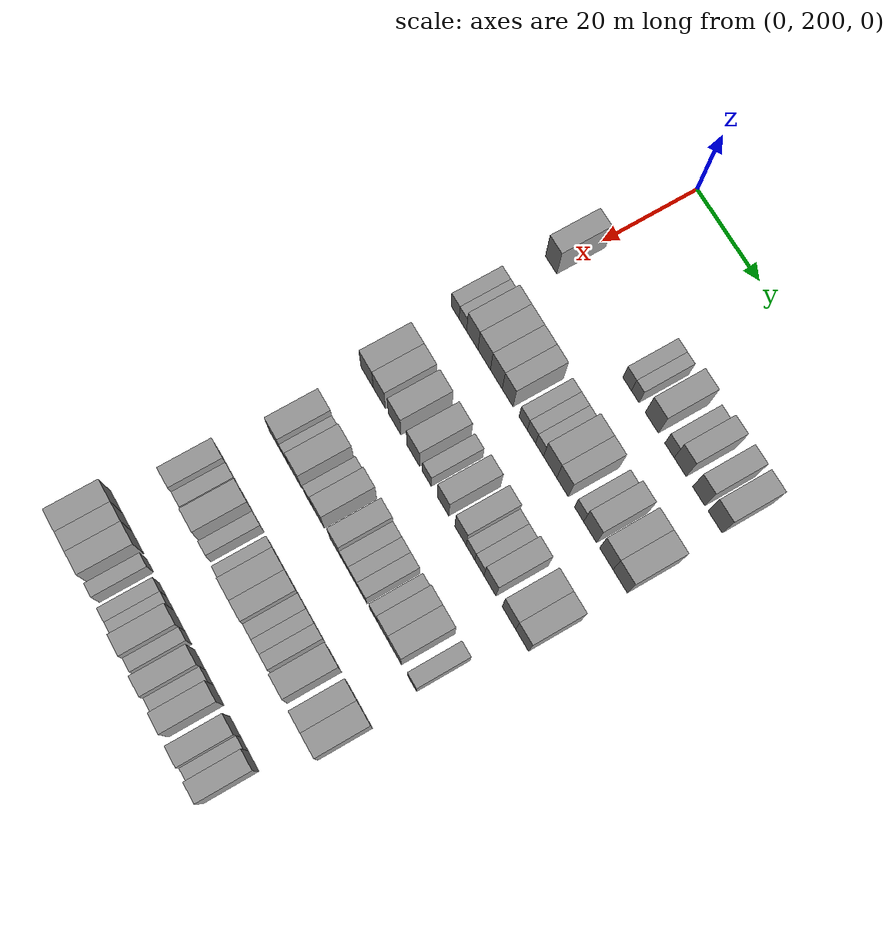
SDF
<sdf version="1.6">
 <world name="default">
  <model name="building_141">
   <static>1</static>
   <pose>25.0000 199.3216 0 0.000000 0.000000 0.000000</pose>
   <link name="link">
    <pose>0 0 4.50 0 0 0</pose>
    <collision name="collision"><geometry><box><size>10.0000 3.8499 9.0000</size></box></geometry></collision>
    <visual name="visual">
     <cast_shadows>0</cast_shadows>
     <geometry><box><size>10.0000 3.8499 9.0000</size></box></geometry>
     <material>
      <script>
       <uri>model://grey_wall/materials/scripts</uri>
       <uri>model://grey_wall/materials/textures</uri>
       <name>vrc/grey_wall</name>
      </script>
     </material>
    </visual>
   </link>
  </model>
  <model name="building_142">
   <static>1</static>
   <pose>25.0000 224.4244 0 0.000000 0.000000 0.000000</pose>
   <link name="link">
    <pose>0 0 3.00 0 0 0</pose>
    <collision name="collision"><geometry><box><size>10.0000 2.7853 6.0000</size></box></geometry></collision>
    <visual name="visual">
     <cast_shadows>0</cast_shadows>
     <geometry><box><size>10.0000 2.7853 6.0000</size></box></geometry>
     <material>
      <script>
       <uri>model://grey_wall/materials/scripts</uri>
       <uri>model://grey_wall/materials/textures</uri>
       <name>vrc/grey_wall</name>
      </script>
     </material>
    </visual>
   </link>
  </model>
  <model name="building_143">
   <static>1</static>
   <pose>25.0000 227.0299 0 0.000000 0.000000 0.000000</pose>
   <link name="link">
    <pose>0 0 3.00 0 0 0</pose>
    <collision name="collision"><geometry><box><size>10.0000 2.4257 6.0000</size></box></geometry></collision>
    <visual name="visual">
     <cast_shadows>0</cast_shadows>
     <geometry><box><size>10.0000 2.4257 6.0000</size></box></geometry>
     <material>
      <script>
       <uri>model://grey_wall/materials/scripts</uri>
       <uri>model://grey_wall/materials/textures</uri>
       <name>vrc/grey_wall</name>
      </script>
     </material>
    </visual>
   </link>
  </model>
  <model name="building_144">
   <static>1</static>
   <pose>25.0000 232.3361 0 0.000000 0.000000 0.000000</pose>
   <link name="link">
    <pose>0 0 4.50 0 0 0</pose>
    <collision name="collision"><geometry><box><size>10.0000 4.1868 9.0000</size></box></geometry></collision>
    <visual name="visual">
     <cast_shadows>0</cast_shadows>
     <geometry><box><size>10.0000 4.1868 9.0000</size></box></geometry>
     <material>
      <script>
       <uri>model://grey_wall/materials/scripts</uri>
       <uri>model://grey_wall/materials/textures</uri>
       <name>vrc/grey_wall</name>
      </script>
     </material>
    </visual>
   </link>
  </model>
  <model name="building_145">
   <static>1</static>
   <pose>25.0000 237.9177 0 0.000000 0.000000 0.000000</pose>
   <link name="link">
    <pose>0 0 3.00 0 0 0</pose>
    <collision name="collision"><geometry><box><size>10.0000 2.9762 6.0000</size></box></geometry></collision>
    <visual name="visual">
     <cast_shadows>0</cast_shadows>
     <geometry><box><size>10.0000 2.9762 6.0000</size></box></geometry>
     <material>
      <script>
       <uri>model://grey_wall/materials/scripts</uri>
       <uri>model://grey_wall/materials/textures</uri>
       <name>vrc/grey_wall</name>
      </script>
     </material>
    </visual>
   </link>
  </model>
  <model name="building_146">
   <static>1</static>
   <pose>25.0000 241.2776 0 0.000000 0.000000 0.000000</pose>
   <link name="link">
    <pose>0 0 4.50 0 0 0</pose>
    <collision name="collision"><geometry><box><size>10.0000 3.7437 9.0000</size></box></geometry></collision>
    <visual name="visual">
     <cast_shadows>0</cast_shadows>
     <geometry><box><size>10.0000 3.7437 9.0000</size></box></geometry>
     <material>
      <script>
       <uri>model://grey_wall/materials/scripts</uri>
       <uri>model://grey_wall/materials/textures</uri>
       <name>vrc/grey_wall</name>
      </script>
     </material>
    </visual>
   </link>
  </model>
  <model name="building_147">
   <static>1</static>
   <pose>25.0000 247.0476 0 0.000000 0.000000 0.000000</pose>
   <link name="link">
    <pose>0 0 4.50 0 0 0</pose>
    <collision name="collision"><geometry><box><size>10.0000 3.7961 9.0000</size></box></geometry></collision>
    <visual name="visual">
     <cast_shadows>0</cast_shadows>
     <geometry><box><size>10.0000 3.7961 9.0000</size></box></geometry>
     <material>
      <script>
       <uri>model://grey_wall/materials/scripts</uri>
       <uri>model://grey_wall/materials/textures</uri>
       <name>vrc/grey_wall</name>
      </script>
     </material>
    </visual>
   </link>
  </model>
  <model name="building_148">
   <static>1</static>
   <pose>25.0000 252.1090 0 0.000000 0.000000 0.000000</pose>
   <link name="link">
    <pose>0 0 4.50 0 0 0</pose>
    <collision name="collision"><geometry><box><size>10.0000 4.3268 9.0000</size></box></geometry></collision>
    <visual name="visual">
     <cast_shadows>0</cast_shadows>
     <geometry><box><size>10.0000 4.3268 9.0000</size></box></geometry>
     <material>
      <script>
       <uri>model://grey_wall/materials/scripts</uri>
       <uri>model://grey_wall/materials/textures</uri>
       <name>vrc/grey_wall</name>
      </script>
     </material>
    </visual>
   </link>
  </model>
  <model name="building_313">
   <static>1</static>
   <pose>44.0000 198.5536 0 0.000000 0.000000 0.000000</pose>
   <link name="link">
    <pose>0 0 3.00 0 0 0</pose>
    <collision name="collision"><geometry><box><size>10.0000 2.7606 6.0000</size></box></geometry></collision>
    <visual name="visual">
     <cast_shadows>0</cast_shadows>
     <geometry><box><size>10.0000 2.7606 6.0000</size></box></geometry>
     <material>
      <script>
       <uri>model://grey_wall/materials/scripts</uri>
       <uri>model://grey_wall/materials/textures</uri>
       <name>vrc/grey_wall</name>
      </script>
     </material>
    </visual>
   </link>
  </model>
  <model name="building_314">
   <static>1</static>
   <pose>44.0000 201.2139 0 0.000000 0.000000 0.000000</pose>
   <link name="link">
    <pose>0 0 3.00 0 0 0</pose>
    <collision name="collision"><geometry><box><size>10.0000 2.5600 6.0000</size></box></geometry></collision>
    <visual name="visual">
     <cast_shadows>0</cast_shadows>
     <geometry><box><size>10.0000 2.5600 6.0000</size></box></geometry>
     <material>
      <script>
       <uri>model://grey_wall/materials/scripts</uri>
       <uri>model://grey_wall/materials/textures</uri>
       <name>vrc/grey_wall</name>
      </script>
     </material>
    </visual>
   </link>
  </model>
  <model name="building_315">
   <static>1</static>
   <pose>44.0000 204.4459 0 0.000000 0.000000 0.000000</pose>
   <link name="link">
    <pose>0 0 4.50 0 0 0</pose>
    <collision name="collision"><geometry><box><size>10.0000 3.9041 9.0000</size></box></geometry></collision>
    <visual name="visual">
     <cast_shadows>0</cast_shadows>
     <geometry><box><size>10.0000 3.9041 9.0000</size></box></geometry>
     <material>
      <script>
       <uri>model://grey_wall/materials/scripts</uri>
       <uri>model://grey_wall/materials/textures</uri>
       <name>vrc/grey_wall</name>
      </script>
     </material>
    </visual>
   </link>
  </model>
  <model name="building_316">
   <static>1</static>
   <pose>44.0000 208.5013 0 0.000000 0.000000 0.000000</pose>
   <link name="link">
    <pose>0 0 4.50 0 0 0</pose>
    <collision name="collision"><geometry><box><size>10.0000 4.2067 9.0000</size></box></geometry></collision>
    <visual name="visual">
     <cast_shadows>0</cast_shadows>
     <geometry><box><size>10.0000 4.2067 9.0000</size></box></geometry>
     <material>
      <script>
       <uri>model://grey_wall/materials/scripts</uri>
       <uri>model://grey_wall/materials/textures</uri>
       <name>vrc/grey_wall</name>
      </script>
     </material>
    </visual>
   </link>
  </model>
  <model name="building_317">
   <static>1</static>
   <pose>44.0000 212.5842 0 0.000000 0.000000 0.000000</pose>
   <link name="link">
    <pose>0 0 4.50 0 0 0</pose>
    <collision name="collision"><geometry><box><size>10.0000 3.9591 9.0000</size></box></geometry></collision>
    <visual name="visual">
     <cast_shadows>0</cast_shadows>
     <geometry><box><size>10.0000 3.9591 9.0000</size></box></geometry>
     <material>
      <script>
       <uri>model://grey_wall/materials/scripts</uri>
       <uri>model://grey_wall/materials/textures</uri>
       <name>vrc/grey_wall</name>
      </script>
     </material>
    </visual>
   </link>
  </model>
  <model name="building_318">
   <static>1</static>
   <pose>44.0000 216.3740 0 0.000000 0.000000 0.000000</pose>
   <link name="link">
    <pose>0 0 4.50 0 0 0</pose>
    <collision name="collision"><geometry><box><size>10.0000 3.6204 9.0000</size></box></geometry></collision>
    <visual name="visual">
     <cast_shadows>0</cast_shadows>
     <geometry><box><size>10.0000 3.6204 9.0000</size></box></geometry>
     <material>
      <script>
       <uri>model://grey_wall/materials/scripts</uri>
       <uri>model://grey_wall/materials/textures</uri>
       <name>vrc/grey_wall</name>
      </script>
     </material>
    </visual>
   </link>
  </model>
  <model name="building_319">
   <static>1</static>
   <pose>44.0000 221.5560 0 0.000000 0.000000 0.000000</pose>
   <link name="link">
    <pose>0 0 3.00 0 0 0</pose>
    <collision name="collision"><geometry><box><size>10.0000 2.7437 6.0000</size></box></geometry></collision>
    <visual name="visual">
     <cast_shadows>0</cast_shadows>
     <geometry><box><size>10.0000 2.7437 6.0000</size></box></geometry>
     <material>
      <script>
       <uri>model://grey_wall/materials/scripts</uri>
       <uri>model://grey_wall/materials/textures</uri>
       <name>vrc/grey_wall</name>
      </script>
     </material>
    </visual>
   </link>
  </model>
  <model name="building_320">
   <static>1</static>
   <pose>44.0000 224.2764 0 0.000000 0.000000 0.000000</pose>
   <link name="link">
    <pose>0 0 3.00 0 0 0</pose>
    <collision name="collision"><geometry><box><size>10.0000 2.6971 6.0000</size></box></geometry></collision>
    <visual name="visual">
     <cast_shadows>0</cast_shadows>
     <geometry><box><size>10.0000 2.6971 6.0000</size></box></geometry>
     <material>
      <script>
       <uri>model://grey_wall/materials/scripts</uri>
       <uri>model://grey_wall/materials/textures</uri>
       <name>vrc/grey_wall</name>
      </script>
     </material>
    </visual>
   </link>
  </model>
  <model name="building_321">
   <static>1</static>
   <pose>44.0000 226.9335 0 0.000000 0.000000 0.000000</pose>
   <link name="link">
    <pose>0 0 3.00 0 0 0</pose>
    <collision name="collision"><geometry><box><size>10.0000 2.6172 6.0000</size></box></geometry></collision>
    <visual name="visual">
     <cast_shadows>0</cast_shadows>
     <geometry><box><size>10.0000 2.6172 6.0000</size></box></geometry>
     <material>
      <script>
       <uri>model://grey_wall/materials/scripts</uri>
       <uri>model://grey_wall/materials/textures</uri>
       <name>vrc/grey_wall</name>
      </script>
     </material>
    </visual>
   </link>
  </model>
  <model name="building_322">
   <static>1</static>
   <pose>44.0000 230.3954 0 0.000000 0.000000 0.000000</pose>
   <link name="link">
    <pose>0 0 4.50 0 0 0</pose>
    <collision name="collision"><geometry><box><size>10.0000 4.3066 9.0000</size></box></geometry></collision>
    <visual name="visual">
     <cast_shadows>0</cast_shadows>
     <geometry><box><size>10.0000 4.3066 9.0000</size></box></geometry>
     <material>
      <script>
       <uri>model://grey_wall/materials/scripts</uri>
       <uri>model://grey_wall/materials/textures</uri>
       <name>vrc/grey_wall</name>
      </script>
     </material>
    </visual>
   </link>
  </model>
  <model name="building_323">
   <static>1</static>
   <pose>44.0000 234.4070 0 0.000000 0.000000 0.000000</pose>
   <link name="link">
    <pose>0 0 4.50 0 0 0</pose>
    <collision name="collision"><geometry><box><size>10.0000 3.7166 9.0000</size></box></geometry></collision>
    <visual name="visual">
     <cast_shadows>0</cast_shadows>
     <geometry><box><size>10.0000 3.7166 9.0000</size></box></geometry>
     <material>
      <script>
       <uri>model://grey_wall/materials/scripts</uri>
       <uri>model://grey_wall/materials/textures</uri>
       <name>vrc/grey_wall</name>
      </script>
     </material>
    </visual>
   </link>
  </model>
  <model name="building_324">
   <static>1</static>
   <pose>44.0000 239.7242 0 0.000000 0.000000 0.000000</pose>
   <link name="link">
    <pose>0 0 3.00 0 0 0</pose>
    <collision name="collision"><geometry><box><size>10.0000 2.9178 6.0000</size></box></geometry></collision>
    <visual name="visual">
     <cast_shadows>0</cast_shadows>
     <geometry><box><size>10.0000 2.9178 6.0000</size></box></geometry>
     <material>
      <script>
       <uri>model://grey_wall/materials/scripts</uri>
       <uri>model://grey_wall/materials/textures</uri>
       <name>vrc/grey_wall</name>
      </script>
     </material>
    </visual>
   </link>
  </model>
  <model name="building_325">
   <static>1</static>
   <pose>44.0000 243.2228 0 0.000000 0.000000 0.000000</pose>
   <link name="link">
    <pose>0 0 4.50 0 0 0</pose>
    <collision name="collision"><geometry><box><size>10.0000 4.0794 9.0000</size></box></geometry></collision>
    <visual name="visual">
     <cast_shadows>0</cast_shadows>
     <geometry><box><size>10.0000 4.0794 9.0000</size></box></geometry>
     <material>
      <script>
       <uri>model://grey_wall/materials/scripts</uri>
       <uri>model://grey_wall/materials/textures</uri>
       <name>vrc/grey_wall</name>
      </script>
     </material>
    </visual>
   </link>
  </model>
  <model name="building_326">
   <static>1</static>
   <pose>44.0000 248.3640 0 0.000000 0.000000 0.000000</pose>
   <link name="link">
    <pose>0 0 4.50 0 0 0</pose>
    <collision name="collision"><geometry><box><size>10.0000 4.2029 9.0000</size></box></geometry></collision>
    <visual name="visual">
     <cast_shadows>0</cast_shadows>
     <geometry><box><size>10.0000 4.2029 9.0000</size></box></geometry>
     <material>
      <script>
       <uri>model://grey_wall/materials/scripts</uri>
       <uri>model://grey_wall/materials/textures</uri>
       <name>vrc/grey_wall</name>
      </script>
     </material>
    </visual>
   </link>
  </model>
  <model name="building_327">
   <static>1</static>
   <pose>44.0000 252.7003 0 0.000000 0.000000 0.000000</pose>
   <link name="link">
    <pose>0 0 4.50 0 0 0</pose>
    <collision name="collision"><geometry><box><size>10.0000 4.4698 9.0000</size></box></geometry></collision>
    <visual name="visual">
     <cast_shadows>0</cast_shadows>
     <geometry><box><size>10.0000 4.4698 9.0000</size></box></geometry>
     <material>
      <script>
       <uri>model://grey_wall/materials/scripts</uri>
       <uri>model://grey_wall/materials/textures</uri>
       <name>vrc/grey_wall</name>
      </script>
     </material>
    </visual>
   </link>
  </model>
  <model name="building_487">
   <static>1</static>
   <pose>63.0000 201.3502 0 0.000000 0.000000 0.000000</pose>
   <link name="link">
    <pose>0 0 4.50 0 0 0</pose>
    <collision name="collision"><geometry><box><size>10.0000 4.3036 9.0000</size></box></geometry></collision>
    <visual name="visual">
     <cast_shadows>0</cast_shadows>
     <geometry><box><size>10.0000 4.3036 9.0000</size></box></geometry>
     <material>
      <script>
       <uri>model://grey_wall/materials/scripts</uri>
       <uri>model://grey_wall/materials/textures</uri>
       <name>vrc/grey_wall</name>
      </script>
     </material>
    </visual>
   </link>
  </model>
  <model name="building_488">
   <static>1</static>
   <pose>63.0000 205.5857 0 0.000000 0.000000 0.000000</pose>
   <link name="link">
    <pose>0 0 4.50 0 0 0</pose>
    <collision name="collision"><geometry><box><size>10.0000 4.1674 9.0000</size></box></geometry></collision>
    <visual name="visual">
     <cast_shadows>0</cast_shadows>
     <geometry><box><size>10.0000 4.1674 9.0000</size></box></geometry>
     <material>
      <script>
       <uri>model://grey_wall/materials/scripts</uri>
       <uri>model://grey_wall/materials/textures</uri>
       <name>vrc/grey_wall</name>
      </script>
     </material>
    </visual>
   </link>
  </model>
  <model name="building_489">
   <static>1</static>
   <pose>63.0000 210.8397 0 0.000000 0.000000 0.000000</pose>
   <link name="link">
    <pose>0 0 4.50 0 0 0</pose>
    <collision name="collision"><geometry><box><size>10.0000 4.3406 9.0000</size></box></geometry></collision>
    <visual name="visual">
     <cast_shadows>0</cast_shadows>
     <geometry><box><size>10.0000 4.3406 9.0000</size></box></geometry>
     <material>
      <script>
       <uri>model://grey_wall/materials/scripts</uri>
       <uri>model://grey_wall/materials/textures</uri>
       <name>vrc/grey_wall</name>
      </script>
     </material>
    </visual>
   </link>
  </model>
  <model name="building_490">
   <static>1</static>
   <pose>63.0000 217.1767 0 0.000000 0.000000 0.000000</pose>
   <link name="link">
    <pose>0 0 4.50 0 0 0</pose>
    <collision name="collision"><geometry><box><size>10.0000 4.3335 9.0000</size></box></geometry></collision>
    <visual name="visual">
     <cast_shadows>0</cast_shadows>
     <geometry><box><size>10.0000 4.3335 9.0000</size></box></geometry>
     <material>
      <script>
       <uri>model://grey_wall/materials/scripts</uri>
       <uri>model://grey_wall/materials/textures</uri>
       <name>vrc/grey_wall</name>
      </script>
     </material>
    </visual>
   </link>
  </model>
  <model name="building_491">
   <static>1</static>
   <pose>63.0000 221.8206 0 0.000000 0.000000 0.000000</pose>
   <link name="link">
    <pose>0 0 3.00 0 0 0</pose>
    <collision name="collision"><geometry><box><size>10.0000 2.9542 6.0000</size></box></geometry></collision>
    <visual name="visual">
     <cast_shadows>0</cast_shadows>
     <geometry><box><size>10.0000 2.9542 6.0000</size></box></geometry>
     <material>
      <script>
       <uri>model://grey_wall/materials/scripts</uri>
       <uri>model://grey_wall/materials/textures</uri>
       <name>vrc/grey_wall</name>
      </script>
     </material>
    </visual>
   </link>
  </model>
  <model name="building_492">
   <static>1</static>
   <pose>63.0000 227.2173 0 0.000000 0.000000 0.000000</pose>
   <link name="link">
    <pose>0 0 4.50 0 0 0</pose>
    <collision name="collision"><geometry><box><size>10.0000 3.8393 9.0000</size></box></geometry></collision>
    <visual name="visual">
     <cast_shadows>0</cast_shadows>
     <geometry><box><size>10.0000 3.8393 9.0000</size></box></geometry>
     <material>
      <script>
       <uri>model://grey_wall/materials/scripts</uri>
       <uri>model://grey_wall/materials/textures</uri>
       <name>vrc/grey_wall</name>
      </script>
     </material>
    </visual>
   </link>
  </model>
  <model name="building_493">
   <static>1</static>
   <pose>63.0000 233.0257 0 0.000000 0.000000 0.000000</pose>
   <link name="link">
    <pose>0 0 4.50 0 0 0</pose>
    <collision name="collision"><geometry><box><size>10.0000 3.7775 9.0000</size></box></geometry></collision>
    <visual name="visual">
     <cast_shadows>0</cast_shadows>
     <geometry><box><size>10.0000 3.7775 9.0000</size></box></geometry>
     <material>
      <script>
       <uri>model://grey_wall/materials/scripts</uri>
       <uri>model://grey_wall/materials/textures</uri>
       <name>vrc/grey_wall</name>
      </script>
     </material>
    </visual>
   </link>
  </model>
  <model name="building_494">
   <static>1</static>
   <pose>63.0000 236.3271 0 0.000000 0.000000 0.000000</pose>
   <link name="link">
    <pose>0 0 3.00 0 0 0</pose>
    <collision name="collision"><geometry><box><size>10.0000 2.8253 6.0000</size></box></geometry></collision>
    <visual name="visual">
     <cast_shadows>0</cast_shadows>
     <geometry><box><size>10.0000 2.8253 6.0000</size></box></geometry>
     <material>
      <script>
       <uri>model://grey_wall/materials/scripts</uri>
       <uri>model://grey_wall/materials/textures</uri>
       <name>vrc/grey_wall</name>
      </script>
     </material>
    </visual>
   </link>
  </model>
  <model name="building_495">
   <static>1</static>
   <pose>63.0000 239.2376 0 0.000000 0.000000 0.000000</pose>
   <link name="link">
    <pose>0 0 3.00 0 0 0</pose>
    <collision name="collision"><geometry><box><size>10.0000 2.9957 6.0000</size></box></geometry></collision>
    <visual name="visual">
     <cast_shadows>0</cast_shadows>
     <geometry><box><size>10.0000 2.9957 6.0000</size></box></geometry>
     <material>
      <script>
       <uri>model://grey_wall/materials/scripts</uri>
       <uri>model://grey_wall/materials/textures</uri>
       <name>vrc/grey_wall</name>
      </script>
     </material>
    </visual>
   </link>
  </model>
  <model name="building_496">
   <static>1</static>
   <pose>63.0000 242.6724 0 0.000000 0.000000 0.000000</pose>
   <link name="link">
    <pose>0 0 4.50 0 0 0</pose>
    <collision name="collision"><geometry><box><size>10.0000 3.8739 9.0000</size></box></geometry></collision>
    <visual name="visual">
     <cast_shadows>0</cast_shadows>
     <geometry><box><size>10.0000 3.8739 9.0000</size></box></geometry>
     <material>
      <script>
       <uri>model://grey_wall/materials/scripts</uri>
       <uri>model://grey_wall/materials/textures</uri>
       <name>vrc/grey_wall</name>
      </script>
     </material>
    </visual>
   </link>
  </model>
  <model name="building_497">
   <static>1</static>
   <pose>63.0000 248.7728 0 0.000000 0.000000 0.000000</pose>
   <link name="link">
    <pose>0 0 4.50 0 0 0</pose>
    <collision name="collision"><geometry><box><size>10.0000 4.3269 9.0000</size></box></geometry></collision>
    <visual name="visual">
     <cast_shadows>0</cast_shadows>
     <geometry><box><size>10.0000 4.3269 9.0000</size></box></geometry>
     <material>
      <script>
       <uri>model://grey_wall/materials/scripts</uri>
       <uri>model://grey_wall/materials/textures</uri>
       <name>vrc/grey_wall</name>
      </script>
     </material>
    </visual>
   </link>
  </model>
  <model name="building_498">
   <static>1</static>
   <pose>63.0000 252.9848 0 0.000000 0.000000 0.000000</pose>
   <link name="link">
    <pose>0 0 4.50 0 0 0</pose>
    <collision name="collision"><geometry><box><size>10.0000 4.0972 9.0000</size></box></geometry></collision>
    <visual name="visual">
     <cast_shadows>0</cast_shadows>
     <geometry><box><size>10.0000 4.0972 9.0000</size></box></geometry>
     <material>
      <script>
       <uri>model://grey_wall/materials/scripts</uri>
       <uri>model://grey_wall/materials/textures</uri>
       <name>vrc/grey_wall</name>
      </script>
     </material>
    </visual>
   </link>
  </model>
  <model name="building_661">
   <static>1</static>
   <pose>82.0000 203.6996 0 0.000000 0.000000 0.000000</pose>
   <link name="link">
    <pose>0 0 4.50 0 0 0</pose>
    <collision name="collision"><geometry><box><size>10.0000 4.3188 9.0000</size></box></geometry></collision>
    <visual name="visual">
     <cast_shadows>0</cast_shadows>
     <geometry><box><size>10.0000 4.3188 9.0000</size></box></geometry>
     <material>
      <script>
       <uri>model://grey_wall/materials/scripts</uri>
       <uri>model://grey_wall/materials/textures</uri>
       <name>vrc/grey_wall</name>
      </script>
     </material>
    </visual>
   </link>
  </model>
  <model name="building_662">
   <static>1</static>
   <pose>82.0000 207.1368 0 0.000000 0.000000 0.000000</pose>
   <link name="link">
    <pose>0 0 3.00 0 0 0</pose>
    <collision name="collision"><geometry><box><size>10.0000 2.5557 6.0000</size></box></geometry></collision>
    <visual name="visual">
     <cast_shadows>0</cast_shadows>
     <geometry><box><size>10.0000 2.5557 6.0000</size></box></geometry>
     <material>
      <script>
       <uri>model://grey_wall/materials/scripts</uri>
       <uri>model://grey_wall/materials/textures</uri>
       <name>vrc/grey_wall</name>
      </script>
     </material>
    </visual>
   </link>
  </model>
  <model name="building_663">
   <static>1</static>
   <pose>82.0000 210.6408 0 0.000000 0.000000 0.000000</pose>
   <link name="link">
    <pose>0 0 4.50 0 0 0</pose>
    <collision name="collision"><geometry><box><size>10.0000 4.4524 9.0000</size></box></geometry></collision>
    <visual name="visual">
     <cast_shadows>0</cast_shadows>
     <geometry><box><size>10.0000 4.4524 9.0000</size></box></geometry>
     <material>
      <script>
       <uri>model://grey_wall/materials/scripts</uri>
       <uri>model://grey_wall/materials/textures</uri>
       <name>vrc/grey_wall</name>
      </script>
     </material>
    </visual>
   </link>
  </model>
  <model name="building_664">
   <static>1</static>
   <pose>82.0000 215.3456 0 0.000000 0.000000 0.000000</pose>
   <link name="link">
    <pose>0 0 3.00 0 0 0</pose>
    <collision name="collision"><geometry><box><size>10.0000 2.9572 6.0000</size></box></geometry></collision>
    <visual name="visual">
     <cast_shadows>0</cast_shadows>
     <geometry><box><size>10.0000 2.9572 6.0000</size></box></geometry>
     <material>
      <script>
       <uri>model://grey_wall/materials/scripts</uri>
       <uri>model://grey_wall/materials/textures</uri>
       <name>vrc/grey_wall</name>
      </script>
     </material>
    </visual>
   </link>
  </model>
  <model name="building_665">
   <static>1</static>
   <pose>82.0000 218.7433 0 0.000000 0.000000 0.000000</pose>
   <link name="link">
    <pose>0 0 4.50 0 0 0</pose>
    <collision name="collision"><geometry><box><size>10.0000 3.8381 9.0000</size></box></geometry></collision>
    <visual name="visual">
     <cast_shadows>0</cast_shadows>
     <geometry><box><size>10.0000 3.8381 9.0000</size></box></geometry>
     <material>
      <script>
       <uri>model://grey_wall/materials/scripts</uri>
       <uri>model://grey_wall/materials/textures</uri>
       <name>vrc/grey_wall</name>
      </script>
     </material>
    </visual>
   </link>
  </model>
  <model name="building_666">
   <static>1</static>
   <pose>82.0000 224.5150 0 0.000000 0.000000 0.000000</pose>
   <link name="link">
    <pose>0 0 4.50 0 0 0</pose>
    <collision name="collision"><geometry><box><size>10.0000 3.7053 9.0000</size></box></geometry></collision>
    <visual name="visual">
     <cast_shadows>0</cast_shadows>
     <geometry><box><size>10.0000 3.7053 9.0000</size></box></geometry>
     <material>
      <script>
       <uri>model://grey_wall/materials/scripts</uri>
       <uri>model://grey_wall/materials/textures</uri>
       <name>vrc/grey_wall</name>
      </script>
     </material>
    </visual>
   </link>
  </model>
  <model name="building_667">
   <static>1</static>
   <pose>82.0000 227.8535 0 0.000000 0.000000 0.000000</pose>
   <link name="link">
    <pose>0 0 3.00 0 0 0</pose>
    <collision name="collision"><geometry><box><size>10.0000 2.9717 6.0000</size></box></geometry></collision>
    <visual name="visual">
     <cast_shadows>0</cast_shadows>
     <geometry><box><size>10.0000 2.9717 6.0000</size></box></geometry>
     <material>
      <script>
       <uri>model://grey_wall/materials/scripts</uri>
       <uri>model://grey_wall/materials/textures</uri>
       <name>vrc/grey_wall</name>
      </script>
     </material>
    </visual>
   </link>
  </model>
  <model name="building_668">
   <static>1</static>
   <pose>82.0000 230.7894 0 0.000000 0.000000 0.000000</pose>
   <link name="link">
    <pose>0 0 3.00 0 0 0</pose>
    <collision name="collision"><geometry><box><size>10.0000 2.9001 6.0000</size></box></geometry></collision>
    <visual name="visual">
     <cast_shadows>0</cast_shadows>
     <geometry><box><size>10.0000 2.9001 6.0000</size></box></geometry>
     <material>
      <script>
       <uri>model://grey_wall/materials/scripts</uri>
       <uri>model://grey_wall/materials/textures</uri>
       <name>vrc/grey_wall</name>
      </script>
     </material>
    </visual>
   </link>
  </model>
  <model name="building_669">
   <static>1</static>
   <pose>82.0000 233.7119 0 0.000000 0.000000 0.000000</pose>
   <link name="link">
    <pose>0 0 3.00 0 0 0</pose>
    <collision name="collision"><geometry><box><size>10.0000 2.9449 6.0000</size></box></geometry></collision>
    <visual name="visual">
     <cast_shadows>0</cast_shadows>
     <geometry><box><size>10.0000 2.9449 6.0000</size></box></geometry>
     <material>
      <script>
       <uri>model://grey_wall/materials/scripts</uri>
       <uri>model://grey_wall/materials/textures</uri>
       <name>vrc/grey_wall</name>
      </script>
     </material>
    </visual>
   </link>
  </model>
  <model name="building_670">
   <static>1</static>
   <pose>82.0000 237.5226 0 0.000000 0.000000 0.000000</pose>
   <link name="link">
    <pose>0 0 3.00 0 0 0</pose>
    <collision name="collision"><geometry><box><size>10.0000 2.6765 6.0000</size></box></geometry></collision>
    <visual name="visual">
     <cast_shadows>0</cast_shadows>
     <geometry><box><size>10.0000 2.6765 6.0000</size></box></geometry>
     <material>
      <script>
       <uri>model://grey_wall/materials/scripts</uri>
       <uri>model://grey_wall/materials/textures</uri>
       <name>vrc/grey_wall</name>
      </script>
     </material>
    </visual>
   </link>
  </model>
  <model name="building_671">
   <static>1</static>
   <pose>82.0000 240.6766 0 0.000000 0.000000 0.000000</pose>
   <link name="link">
    <pose>0 0 4.50 0 0 0</pose>
    <collision name="collision"><geometry><box><size>10.0000 3.6316 9.0000</size></box></geometry></collision>
    <visual name="visual">
     <cast_shadows>0</cast_shadows>
     <geometry><box><size>10.0000 3.6316 9.0000</size></box></geometry>
     <material>
      <script>
       <uri>model://grey_wall/materials/scripts</uri>
       <uri>model://grey_wall/materials/textures</uri>
       <name>vrc/grey_wall</name>
      </script>
     </material>
    </visual>
   </link>
  </model>
  <model name="building_672">
   <static>1</static>
   <pose>82.0000 244.5646 0 0.000000 0.000000 0.000000</pose>
   <link name="link">
    <pose>0 0 4.50 0 0 0</pose>
    <collision name="collision"><geometry><box><size>10.0000 4.1444 9.0000</size></box></geometry></collision>
    <visual name="visual">
     <cast_shadows>0</cast_shadows>
     <geometry><box><size>10.0000 4.1444 9.0000</size></box></geometry>
     <material>
      <script>
       <uri>model://grey_wall/materials/scripts</uri>
       <uri>model://grey_wall/materials/textures</uri>
       <name>vrc/grey_wall</name>
      </script>
     </material>
    </visual>
   </link>
  </model>
  <model name="building_673">
   <static>1</static>
   <pose>82.0000 250.1136 0 0.000000 0.000000 0.000000</pose>
   <link name="link">
    <pose>0 0 3.00 0 0 0</pose>
    <collision name="collision"><geometry><box><size>10.0000 2.9536 6.0000</size></box></geometry></collision>
    <visual name="visual">
     <cast_shadows>0</cast_shadows>
     <geometry><box><size>10.0000 2.9536 6.0000</size></box></geometry>
     <material>
      <script>
       <uri>model://grey_wall/materials/scripts</uri>
       <uri>model://grey_wall/materials/textures</uri>
       <name>vrc/grey_wall</name>
      </script>
     </material>
    </visual>
   </link>
  </model>
  <model name="building_833">
   <static>1</static>
   <pose>101.0000 202.2206 0 0.000000 0.000000 0.000000</pose>
   <link name="link">
    <pose>0 0 4.50 0 0 0</pose>
    <collision name="collision"><geometry><box><size>10.0000 3.8765 9.0000</size></box></geometry></collision>
    <visual name="visual">
     <cast_shadows>0</cast_shadows>
     <geometry><box><size>10.0000 3.8765 9.0000</size></box></geometry>
     <material>
      <script>
       <uri>model://grey_wall/materials/scripts</uri>
       <uri>model://grey_wall/materials/textures</uri>
       <name>vrc/grey_wall</name>
      </script>
     </material>
    </visual>
   </link>
  </model>
  <model name="building_834">
   <static>1</static>
   <pose>101.0000 205.6199 0 0.000000 0.000000 0.000000</pose>
   <link name="link">
    <pose>0 0 3.00 0 0 0</pose>
    <collision name="collision"><geometry><box><size>10.0000 2.9221 6.0000</size></box></geometry></collision>
    <visual name="visual">
     <cast_shadows>0</cast_shadows>
     <geometry><box><size>10.0000 2.9221 6.0000</size></box></geometry>
     <material>
      <script>
       <uri>model://grey_wall/materials/scripts</uri>
       <uri>model://grey_wall/materials/textures</uri>
       <name>vrc/grey_wall</name>
      </script>
     </material>
    </visual>
   </link>
  </model>
  <model name="building_835">
   <static>1</static>
   <pose>101.0000 210.3074 0 0.000000 0.000000 0.000000</pose>
   <link name="link">
    <pose>0 0 4.50 0 0 0</pose>
    <collision name="collision"><geometry><box><size>10.0000 4.4530 9.0000</size></box></geometry></collision>
    <visual name="visual">
     <cast_shadows>0</cast_shadows>
     <geometry><box><size>10.0000 4.4530 9.0000</size></box></geometry>
     <material>
      <script>
       <uri>model://grey_wall/materials/scripts</uri>
       <uri>model://grey_wall/materials/textures</uri>
       <name>vrc/grey_wall</name>
      </script>
     </material>
    </visual>
   </link>
  </model>
  <model name="building_836">
   <static>1</static>
   <pose>101.0000 214.9007 0 0.000000 0.000000 0.000000</pose>
   <link name="link">
    <pose>0 0 3.00 0 0 0</pose>
    <collision name="collision"><geometry><box><size>10.0000 2.7336 6.0000</size></box></geometry></collision>
    <visual name="visual">
     <cast_shadows>0</cast_shadows>
     <geometry><box><size>10.0000 2.7336 6.0000</size></box></geometry>
     <material>
      <script>
       <uri>model://grey_wall/materials/scripts</uri>
       <uri>model://grey_wall/materials/textures</uri>
       <name>vrc/grey_wall</name>
      </script>
     </material>
    </visual>
   </link>
  </model>
  <model name="building_837">
   <static>1</static>
   <pose>101.0000 219.6294 0 0.000000 0.000000 0.000000</pose>
   <link name="link">
    <pose>0 0 3.00 0 0 0</pose>
    <collision name="collision"><geometry><box><size>10.0000 2.7238 6.0000</size></box></geometry></collision>
    <visual name="visual">
     <cast_shadows>0</cast_shadows>
     <geometry><box><size>10.0000 2.7238 6.0000</size></box></geometry>
     <material>
      <script>
       <uri>model://grey_wall/materials/scripts</uri>
       <uri>model://grey_wall/materials/textures</uri>
       <name>vrc/grey_wall</name>
      </script>
     </material>
    </visual>
   </link>
  </model>
  <model name="building_838">
   <static>1</static>
   <pose>101.0000 223.0688 0 0.000000 0.000000 0.000000</pose>
   <link name="link">
    <pose>0 0 4.50 0 0 0</pose>
    <collision name="collision"><geometry><box><size>10.0000 4.1552 9.0000</size></box></geometry></collision>
    <visual name="visual">
     <cast_shadows>0</cast_shadows>
     <geometry><box><size>10.0000 4.1552 9.0000</size></box></geometry>
     <material>
      <script>
       <uri>model://grey_wall/materials/scripts</uri>
       <uri>model://grey_wall/materials/textures</uri>
       <name>vrc/grey_wall</name>
      </script>
     </material>
    </visual>
   </link>
  </model>
  <model name="building_839">
   <static>1</static>
   <pose>101.0000 227.0503 0 0.000000 0.000000 0.000000</pose>
   <link name="link">
    <pose>0 0 4.50 0 0 0</pose>
    <collision name="collision"><geometry><box><size>10.0000 3.8078 9.0000</size></box></geometry></collision>
    <visual name="visual">
     <cast_shadows>0</cast_shadows>
     <geometry><box><size>10.0000 3.8078 9.0000</size></box></geometry>
     <material>
      <script>
       <uri>model://grey_wall/materials/scripts</uri>
       <uri>model://grey_wall/materials/textures</uri>
       <name>vrc/grey_wall</name>
      </script>
     </material>
    </visual>
   </link>
  </model>
  <model name="building_840">
   <static>1</static>
   <pose>101.0000 230.3859 0 0.000000 0.000000 0.000000</pose>
   <link name="link">
    <pose>0 0 3.00 0 0 0</pose>
    <collision name="collision"><geometry><box><size>10.0000 2.8635 6.0000</size></box></geometry></collision>
    <visual name="visual">
     <cast_shadows>0</cast_shadows>
     <geometry><box><size>10.0000 2.8635 6.0000</size></box></geometry>
     <material>
      <script>
       <uri>model://grey_wall/materials/scripts</uri>
       <uri>model://grey_wall/materials/textures</uri>
       <name>vrc/grey_wall</name>
      </script>
     </material>
    </visual>
   </link>
  </model>
  <model name="building_841">
   <static>1</static>
   <pose>101.0000 233.1712 0 0.000000 0.000000 0.000000</pose>
   <link name="link">
    <pose>0 0 3.00 0 0 0</pose>
    <collision name="collision"><geometry><box><size>10.0000 2.7071 6.0000</size></box></geometry></collision>
    <visual name="visual">
     <cast_shadows>0</cast_shadows>
     <geometry><box><size>10.0000 2.7071 6.0000</size></box></geometry>
     <material>
      <script>
       <uri>model://grey_wall/materials/scripts</uri>
       <uri>model://grey_wall/materials/textures</uri>
       <name>vrc/grey_wall</name>
      </script>
     </material>
    </visual>
   </link>
  </model>
  <model name="building_842">
   <static>1</static>
   <pose>101.0000 235.9362 0 0.000000 0.000000 0.000000</pose>
   <link name="link">
    <pose>0 0 3.00 0 0 0</pose>
    <collision name="collision"><geometry><box><size>10.0000 2.8228 6.0000</size></box></geometry></collision>
    <visual name="visual">
     <cast_shadows>0</cast_shadows>
     <geometry><box><size>10.0000 2.8228 6.0000</size></box></geometry>
     <material>
      <script>
       <uri>model://grey_wall/materials/scripts</uri>
       <uri>model://grey_wall/materials/textures</uri>
       <name>vrc/grey_wall</name>
      </script>
     </material>
    </visual>
   </link>
  </model>
  <model name="building_843">
   <static>1</static>
   <pose>101.0000 240.5971 0 0.000000 0.000000 0.000000</pose>
   <link name="link">
    <pose>0 0 4.50 0 0 0</pose>
    <collision name="collision"><geometry><box><size>10.0000 4.4989 9.0000</size></box></geometry></collision>
    <visual name="visual">
     <cast_shadows>0</cast_shadows>
     <geometry><box><size>10.0000 4.4989 9.0000</size></box></geometry>
     <material>
      <script>
       <uri>model://grey_wall/materials/scripts</uri>
       <uri>model://grey_wall/materials/textures</uri>
       <name>vrc/grey_wall</name>
      </script>
     </material>
    </visual>
   </link>
  </model>
  <model name="building_844">
   <static>1</static>
   <pose>101.0000 246.7779 0 0.000000 0.000000 0.000000</pose>
   <link name="link">
    <pose>0 0 4.50 0 0 0</pose>
    <collision name="collision"><geometry><box><size>10.0000 3.8628 9.0000</size></box></geometry></collision>
    <visual name="visual">
     <cast_shadows>0</cast_shadows>
     <geometry><box><size>10.0000 3.8628 9.0000</size></box></geometry>
     <material>
      <script>
       <uri>model://grey_wall/materials/scripts</uri>
       <uri>model://grey_wall/materials/textures</uri>
       <name>vrc/grey_wall</name>
      </script>
     </material>
    </visual>
   </link>
  </model>
  <model name="building_845">
   <static>1</static>
   <pose>101.0000 250.9268 0 0.000000 0.000000 0.000000</pose>
   <link name="link">
    <pose>0 0 4.50 0 0 0</pose>
    <collision name="collision"><geometry><box><size>10.0000 4.4350 9.0000</size></box></geometry></collision>
    <visual name="visual">
     <cast_shadows>0</cast_shadows>
     <geometry><box><size>10.0000 4.4350 9.0000</size></box></geometry>
     <material>
      <script>
       <uri>model://grey_wall/materials/scripts</uri>
       <uri>model://grey_wall/materials/textures</uri>
       <name>vrc/grey_wall</name>
      </script>
     </material>
    </visual>
   </link>
  </model>
  <model name="building_1008">
   <static>1</static>
   <pose>120.0000 199.4192 0 0.000000 0.000000 0.000000</pose>
   <link name="link">
    <pose>0 0 4.50 0 0 0</pose>
    <collision name="collision"><geometry><box><size>10.0000 4.2566 9.0000</size></box></geometry></collision>
    <visual name="visual">
     <cast_shadows>0</cast_shadows>
     <geometry><box><size>10.0000 4.2566 9.0000</size></box></geometry>
     <material>
      <script>
       <uri>model://grey_wall/materials/scripts</uri>
       <uri>model://grey_wall/materials/textures</uri>
       <name>vrc/grey_wall</name>
      </script>
     </material>
    </visual>
   </link>
  </model>
  <model name="building_1009">
   <static>1</static>
   <pose>120.0000 203.3925 0 0.000000 0.000000 0.000000</pose>
   <link name="link">
    <pose>0 0 4.50 0 0 0</pose>
    <collision name="collision"><geometry><box><size>10.0000 3.6900 9.0000</size></box></geometry></collision>
    <visual name="visual">
     <cast_shadows>0</cast_shadows>
     <geometry><box><size>10.0000 3.6900 9.0000</size></box></geometry>
     <material>
      <script>
       <uri>model://grey_wall/materials/scripts</uri>
       <uri>model://grey_wall/materials/textures</uri>
       <name>vrc/grey_wall</name>
      </script>
     </material>
    </visual>
   </link>
  </model>
  <model name="building_1010">
   <static>1</static>
   <pose>120.0000 207.3870 0 0.000000 0.000000 0.000000</pose>
   <link name="link">
    <pose>0 0 4.50 0 0 0</pose>
    <collision name="collision"><geometry><box><size>10.0000 4.2989 9.0000</size></box></geometry></collision>
    <visual name="visual">
     <cast_shadows>0</cast_shadows>
     <geometry><box><size>10.0000 4.2989 9.0000</size></box></geometry>
     <material>
      <script>
       <uri>model://grey_wall/materials/scripts</uri>
       <uri>model://grey_wall/materials/textures</uri>
       <name>vrc/grey_wall</name>
      </script>
     </material>
    </visual>
   </link>
  </model>
  <model name="building_1011">
   <static>1</static>
   <pose>120.0000 211.8375 0 0.000000 0.000000 0.000000</pose>
   <link name="link">
    <pose>0 0 3.00 0 0 0</pose>
    <collision name="collision"><geometry><box><size>10.0000 2.6021 6.0000</size></box></geometry></collision>
    <visual name="visual">
     <cast_shadows>0</cast_shadows>
     <geometry><box><size>10.0000 2.6021 6.0000</size></box></geometry>
     <material>
      <script>
       <uri>model://grey_wall/materials/scripts</uri>
       <uri>model://grey_wall/materials/textures</uri>
       <name>vrc/grey_wall</name>
      </script>
     </material>
    </visual>
   </link>
  </model>
  <model name="building_1012">
   <static>1</static>
   <pose>120.0000 216.4359 0 0.000000 0.000000 0.000000</pose>
   <link name="link">
    <pose>0 0 3.00 0 0 0</pose>
    <collision name="collision"><geometry><box><size>10.0000 2.5948 6.0000</size></box></geometry></collision>
    <visual name="visual">
     <cast_shadows>0</cast_shadows>
     <geometry><box><size>10.0000 2.5948 6.0000</size></box></geometry>
     <material>
      <script>
       <uri>model://grey_wall/materials/scripts</uri>
       <uri>model://grey_wall/materials/textures</uri>
       <name>vrc/grey_wall</name>
      </script>
     </material>
    </visual>
   </link>
  </model>
  <model name="building_1013">
   <static>1</static>
   <pose>120.0000 219.0464 0 0.000000 0.000000 0.000000</pose>
   <link name="link">
    <pose>0 0 3.00 0 0 0</pose>
    <collision name="collision"><geometry><box><size>10.0000 2.6263 6.0000</size></box></geometry></collision>
    <visual name="visual">
     <cast_shadows>0</cast_shadows>
     <geometry><box><size>10.0000 2.6263 6.0000</size></box></geometry>
     <material>
      <script>
       <uri>model://grey_wall/materials/scripts</uri>
       <uri>model://grey_wall/materials/textures</uri>
       <name>vrc/grey_wall</name>
      </script>
     </material>
    </visual>
   </link>
  </model>
  <model name="building_1014">
   <static>1</static>
   <pose>120.0000 222.3153 0 0.000000 0.000000 0.000000</pose>
   <link name="link">
    <pose>0 0 4.50 0 0 0</pose>
    <collision name="collision"><geometry><box><size>10.0000 3.9113 9.0000</size></box></geometry></collision>
    <visual name="visual">
     <cast_shadows>0</cast_shadows>
     <geometry><box><size>10.0000 3.9113 9.0000</size></box></geometry>
     <material>
      <script>
       <uri>model://grey_wall/materials/scripts</uri>
       <uri>model://grey_wall/materials/textures</uri>
       <name>vrc/grey_wall</name>
      </script>
     </material>
    </visual>
   </link>
  </model>
  <model name="building_1015">
   <static>1</static>
   <pose>120.0000 225.5287 0 0.000000 0.000000 0.000000</pose>
   <link name="link">
    <pose>0 0 3.00 0 0 0</pose>
    <collision name="collision"><geometry><box><size>10.0000 2.5156 6.0000</size></box></geometry></collision>
    <visual name="visual">
     <cast_shadows>0</cast_shadows>
     <geometry><box><size>10.0000 2.5156 6.0000</size></box></geometry>
     <material>
      <script>
       <uri>model://grey_wall/materials/scripts</uri>
       <uri>model://grey_wall/materials/textures</uri>
       <name>vrc/grey_wall</name>
      </script>
     </material>
    </visual>
   </link>
  </model>
  <model name="building_1016">
   <static>1</static>
   <pose>120.0000 229.6332 0 0.000000 0.000000 0.000000</pose>
   <link name="link">
    <pose>0 0 4.50 0 0 0</pose>
    <collision name="collision"><geometry><box><size>10.0000 3.6933 9.0000</size></box></geometry></collision>
    <visual name="visual">
     <cast_shadows>0</cast_shadows>
     <geometry><box><size>10.0000 3.6933 9.0000</size></box></geometry>
     <material>
      <script>
       <uri>model://grey_wall/materials/scripts</uri>
       <uri>model://grey_wall/materials/textures</uri>
       <name>vrc/grey_wall</name>
      </script>
     </material>
    </visual>
   </link>
  </model>
  <model name="building_1017">
   <static>1</static>
   <pose>120.0000 232.8794 0 0.000000 0.000000 0.000000</pose>
   <link name="link">
    <pose>0 0 3.00 0 0 0</pose>
    <collision name="collision"><geometry><box><size>10.0000 2.7991 6.0000</size></box></geometry></collision>
    <visual name="visual">
     <cast_shadows>0</cast_shadows>
     <geometry><box><size>10.0000 2.7991 6.0000</size></box></geometry>
     <material>
      <script>
       <uri>model://grey_wall/materials/scripts</uri>
       <uri>model://grey_wall/materials/textures</uri>
       <name>vrc/grey_wall</name>
      </script>
     </material>
    </visual>
   </link>
  </model>
  <model name="building_1018">
   <static>1</static>
   <pose>120.0000 236.1667 0 0.000000 0.000000 0.000000</pose>
   <link name="link">
    <pose>0 0 4.50 0 0 0</pose>
    <collision name="collision"><geometry><box><size>10.0000 3.7755 9.0000</size></box></geometry></collision>
    <visual name="visual">
     <cast_shadows>0</cast_shadows>
     <geometry><box><size>10.0000 3.7755 9.0000</size></box></geometry>
     <material>
      <script>
       <uri>model://grey_wall/materials/scripts</uri>
       <uri>model://grey_wall/materials/textures</uri>
       <name>vrc/grey_wall</name>
      </script>
     </material>
    </visual>
   </link>
  </model>
  <model name="building_1019">
   <static>1</static>
   <pose>120.0000 241.9302 0 0.000000 0.000000 0.000000</pose>
   <link name="link">
    <pose>0 0 4.50 0 0 0</pose>
    <collision name="collision"><geometry><box><size>10.0000 3.7515 9.0000</size></box></geometry></collision>
    <visual name="visual">
     <cast_shadows>0</cast_shadows>
     <geometry><box><size>10.0000 3.7515 9.0000</size></box></geometry>
     <material>
      <script>
       <uri>model://grey_wall/materials/scripts</uri>
       <uri>model://grey_wall/materials/textures</uri>
       <name>vrc/grey_wall</name>
      </script>
     </material>
    </visual>
   </link>
  </model>
  <model name="building_1020">
   <static>1</static>
   <pose>120.0000 245.0214 0 0.000000 0.000000 0.000000</pose>
   <link name="link">
    <pose>0 0 3.00 0 0 0</pose>
    <collision name="collision"><geometry><box><size>10.0000 2.4310 6.0000</size></box></geometry></collision>
    <visual name="visual">
     <cast_shadows>0</cast_shadows>
     <geometry><box><size>10.0000 2.4310 6.0000</size></box></geometry>
     <material>
      <script>
       <uri>model://grey_wall/materials/scripts</uri>
       <uri>model://grey_wall/materials/textures</uri>
       <name>vrc/grey_wall</name>
      </script>
     </material>
    </visual>
   </link>
  </model>
  <model name="building_1021">
   <static>1</static>
   <pose>120.0000 248.1166 0 0.000000 0.000000 0.000000</pose>
   <link name="link">
    <pose>0 0 4.50 0 0 0</pose>
    <collision name="collision"><geometry><box><size>10.0000 3.7595 9.0000</size></box></geometry></collision>
    <visual name="visual">
     <cast_shadows>0</cast_shadows>
     <geometry><box><size>10.0000 3.7595 9.0000</size></box></geometry>
     <material>
      <script>
       <uri>model://grey_wall/materials/scripts</uri>
       <uri>model://grey_wall/materials/textures</uri>
       <name>vrc/grey_wall</name>
      </script>
     </material>
    </visual>
   </link>
  </model>
 </world>
</sdf>
